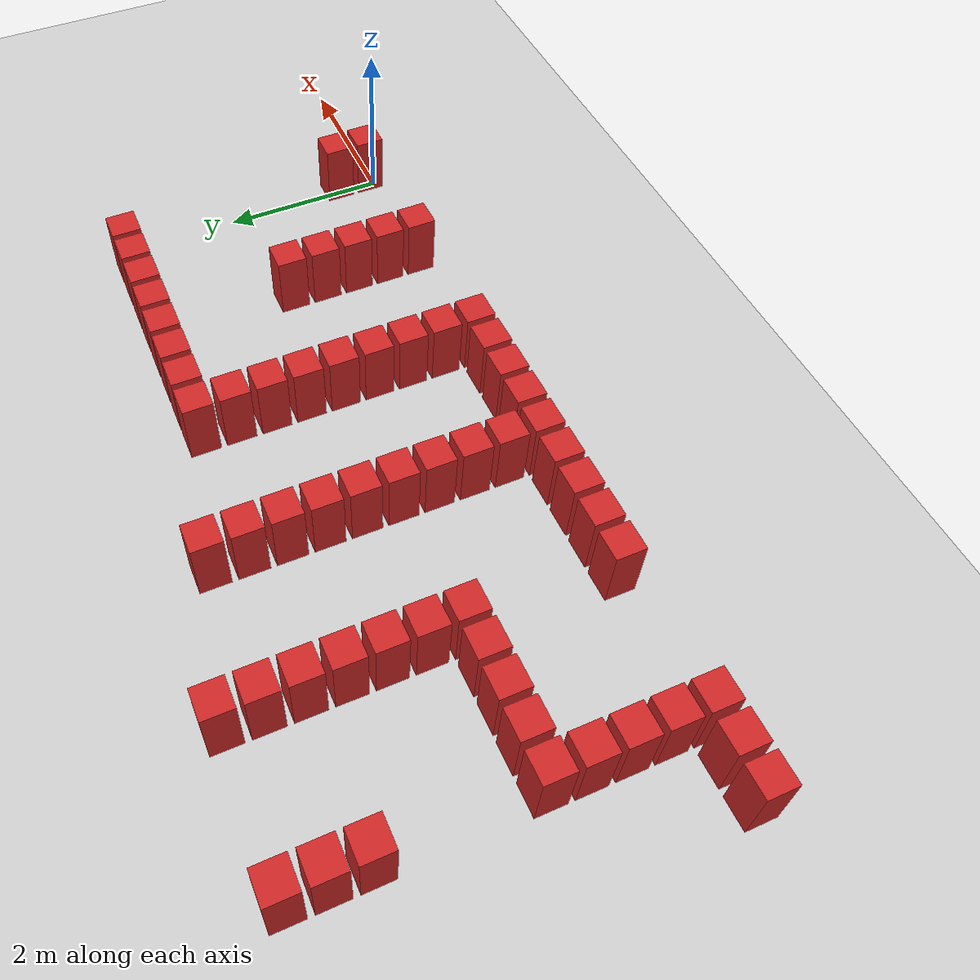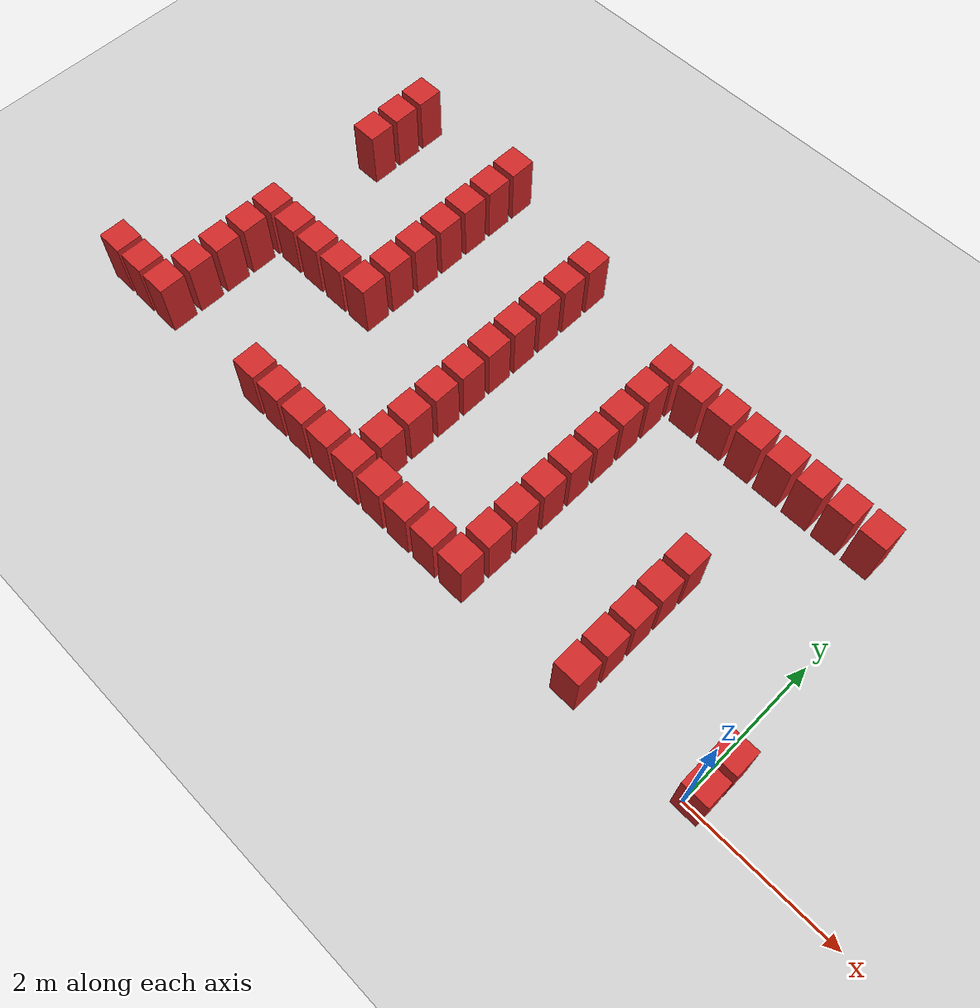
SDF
<sdf version="1.6">
 <world name="default">
  <model name="ground_plane">
   <static>1</static>
   <link name="link">
    <collision name="collision">
     <geometry><plane><normal>0 0 1</normal><size>100 100</size></plane></geometry>
     <surface><friction><ode><mu>100</mu><mu2>50</mu2></ode></friction></surface>
    </collision>
    <visual name="visual">
     <cast_shadows>0</cast_shadows>
     <geometry><plane><normal>0 0 1</normal><size>100 100</size></plane></geometry>
     <material>
      <script><uri>file://media/materials/scripts/gazebo.material</uri><name>Gazebo/Grey</name></script>
     </material>
    </visual>
   </link>
  </model>
  <model name="box_obstacle3">
   <static>0</static>
   <link name="link">
    <pose>0 0 0.1 0 -0 0</pose>
    <inertial>
     <mass>100</mass>
     <inertia>
      <ixx>0.166667</ixx>
      <ixy>0</ixy>
      <ixz>0</ixz>
      <iyy>0.166667</iyy>
      <iyz>0</iyz>
      <izz>0.166667</izz>
     </inertia>
    </inertial>
    <collision name="collision"><geometry><box><size>0.35 0.35 0.8</size></box></geometry></collision>
    <visual name="visual">
     <geometry><box><size>0.35 0.35 0.8</size></box></geometry>
     <material>
      <script><name>Gazebo/Red</name><uri>file://media/materials/scripts/gazebo.material</uri></script>
     </material>
    </visual>
   </link>
   <pose>-9.16034 0.080061 0.300001 -1e-06 1.7e-05 0.000735</pose>
  </model>
  <model name="box_obstacle5">
   <static>0</static>
   <link name="link">
    <pose>0 0 0.1 0 -0 0</pose>
    <inertial>
     <mass>100</mass>
     <inertia>
      <ixx>0.166667</ixx>
      <ixy>0</ixy>
      <ixz>0</ixz>
      <iyy>0.166667</iyy>
      <iyz>0</iyz>
      <izz>0.166667</izz>
     </inertia>
    </inertial>
    <collision name="collision"><geometry><box><size>0.35 0.35 0.8</size></box></geometry></collision>
    <visual name="visual">
     <geometry><box><size>0.35 0.35 0.8</size></box></geometry>
     <material>
      <script><name>Gazebo/Red</name><uri>file://media/materials/scripts/gazebo.material</uri></script>
     </material>
    </visual>
   </link>
   <pose>-8.74034 0.080061 0.300001 -1e-06 1.7e-05 0.000735</pose>
  </model>
  <model name="box_obstacle17">
   <static>0</static>
   <link name="link">
    <pose>0 0 0.1 0 -0 0</pose>
    <inertial>
     <mass>100</mass>
     <inertia>
      <ixx>0.166667</ixx>
      <ixy>0</ixy>
      <ixz>0</ixz>
      <iyy>0.166667</iyy>
      <iyz>0</iyz>
      <izz>0.166667</izz>
     </inertia>
    </inertial>
    <collision name="collision"><geometry><box><size>0.35 0.35 0.8</size></box></geometry></collision>
    <visual name="visual">
     <geometry><box><size>0.35 0.35 0.8</size></box></geometry>
     <material>
      <script><name>Gazebo/Red</name><uri>file://media/materials/scripts/gazebo.material</uri></script>
     </material>
    </visual>
   </link>
   <pose>-8.32034 0.080061 0.300001 -1e-06 1.7e-05 0.000735</pose>
  </model>
  <model name="box_obstacle18">
   <static>0</static>
   <link name="link">
    <pose>0 0 0.1 0 -0 0</pose>
    <inertial>
     <mass>100</mass>
     <inertia>
      <ixx>0.166667</ixx>
      <ixy>0</ixy>
      <ixz>0</ixz>
      <iyy>0.166667</iyy>
      <iyz>0</iyz>
      <izz>0.166667</izz>
     </inertia>
    </inertial>
    <collision name="collision"><geometry><box><size>0.35 0.35 0.8</size></box></geometry></collision>
    <visual name="visual">
     <geometry><box><size>0.35 0.35 0.8</size></box></geometry>
     <material>
      <script><name>Gazebo/Red</name><uri>file://media/materials/scripts/gazebo.material</uri></script>
     </material>
    </visual>
   </link>
   <pose>-8.32034 0.500061 0.300001 -1e-06 1.7e-05 0.000735</pose>
  </model>
  <model name="box_obstacle19">
   <static>0</static>
   <link name="link">
    <pose>0 0 0.1 0 -0 0</pose>
    <inertial>
     <mass>100</mass>
     <inertia>
      <ixx>0.166667</ixx>
      <ixy>0</ixy>
      <ixz>0</ixz>
      <iyy>0.166667</iyy>
      <iyz>0</iyz>
      <izz>0.166667</izz>
     </inertia>
    </inertial>
    <collision name="collision"><geometry><box><size>0.35 0.35 0.8</size></box></geometry></collision>
    <visual name="visual">
     <geometry><box><size>0.35 0.35 0.8</size></box></geometry>
     <material>
      <script><name>Gazebo/Red</name><uri>file://media/materials/scripts/gazebo.material</uri></script>
     </material>
    </visual>
   </link>
   <pose>-8.32034 0.920061 0.300001 -1e-06 1.7e-05 0.000735</pose>
  </model>
  <model name="box_obstacle20">
   <static>0</static>
   <link name="link">
    <pose>0 0 0.1 0 -0 0</pose>
    <inertial>
     <mass>100</mass>
     <inertia>
      <ixx>0.166667</ixx>
      <ixy>0</ixy>
      <ixz>0</ixz>
      <iyy>0.166667</iyy>
      <iyz>0</iyz>
      <izz>0.166667</izz>
     </inertia>
    </inertial>
    <collision name="collision"><geometry><box><size>0.35 0.35 0.8</size></box></geometry></collision>
    <visual name="visual">
     <geometry><box><size>0.35 0.35 0.8</size></box></geometry>
     <material>
      <script><name>Gazebo/Red</name><uri>file://media/materials/scripts/gazebo.material</uri></script>
     </material>
    </visual>
   </link>
   <pose>-8.32034 1.34006 0.300001 -1e-06 1.7e-05 0.000735</pose>
  </model>
  <model name="box_obstacle21">
   <static>0</static>
   <link name="link">
    <pose>0 0 0.1 0 -0 0</pose>
    <inertial>
     <mass>100</mass>
     <inertia>
      <ixx>0.166667</ixx>
      <ixy>0</ixy>
      <ixz>0</ixz>
      <iyy>0.166667</iyy>
      <iyz>0</iyz>
      <izz>0.166667</izz>
     </inertia>
    </inertial>
    <collision name="collision"><geometry><box><size>0.35 0.35 0.8</size></box></geometry></collision>
    <visual name="visual">
     <geometry><box><size>0.35 0.35 0.8</size></box></geometry>
     <material>
      <script><name>Gazebo/Red</name><uri>file://media/materials/scripts/gazebo.material</uri></script>
     </material>
    </visual>
   </link>
   <pose>-8.32034 1.76006 0.300001 -1e-06 1.7e-05 0.000735</pose>
  </model>
  <model name="box_obstacle22">
   <static>0</static>
   <link name="link">
    <pose>0 0 0.1 0 -0 0</pose>
    <inertial>
     <mass>100</mass>
     <inertia>
      <ixx>0.166667</ixx>
      <ixy>0</ixy>
      <ixz>0</ixz>
      <iyy>0.166667</iyy>
      <iyz>0</iyz>
      <izz>0.166667</izz>
     </inertia>
    </inertial>
    <collision name="collision"><geometry><box><size>0.35 0.35 0.8</size></box></geometry></collision>
    <visual name="visual">
     <geometry><box><size>0.35 0.35 0.8</size></box></geometry>
     <material>
      <script><name>Gazebo/Red</name><uri>file://media/materials/scripts/gazebo.material</uri></script>
     </material>
    </visual>
   </link>
   <pose>-8.32034 3.44006 0.300001 -1e-06 1.7e-05 0.000735</pose>
  </model>
  <model name="box_obstacle23">
   <static>0</static>
   <link name="link">
    <pose>0 0 0.1 0 -0 0</pose>
    <inertial>
     <mass>100</mass>
     <inertia>
      <ixx>0.166667</ixx>
      <ixy>0</ixy>
      <ixz>0</ixz>
      <iyy>0.166667</iyy>
      <iyz>0</iyz>
      <izz>0.166667</izz>
     </inertia>
    </inertial>
    <collision name="collision"><geometry><box><size>0.35 0.35 0.8</size></box></geometry></collision>
    <visual name="visual">
     <geometry><box><size>0.35 0.35 0.8</size></box></geometry>
     <material>
      <script><name>Gazebo/Red</name><uri>file://media/materials/scripts/gazebo.material</uri></script>
     </material>
    </visual>
   </link>
   <pose>-8.32034 3.86006 0.300001 -1e-06 1.7e-05 0.000735</pose>
  </model>
  <model name="box_obstacle24">
   <static>0</static>
   <link name="link">
    <pose>0 0 0.1 0 -0 0</pose>
    <inertial>
     <mass>100</mass>
     <inertia>
      <ixx>0.166667</ixx>
      <ixy>0</ixy>
      <ixz>0</ixz>
      <iyy>0.166667</iyy>
      <iyz>0</iyz>
      <izz>0.166667</izz>
     </inertia>
    </inertial>
    <collision name="collision"><geometry><box><size>0.35 0.35 0.8</size></box></geometry></collision>
    <visual name="visual">
     <geometry><box><size>0.35 0.35 0.8</size></box></geometry>
     <material>
      <script><name>Gazebo/Red</name><uri>file://media/materials/scripts/gazebo.material</uri></script>
     </material>
    </visual>
   </link>
   <pose>-8.32034 4.28006 0.300001 -1e-06 1.7e-05 0.000735</pose>
  </model>
  <model name="box_obstacle38">
   <static>0</static>
   <link name="link">
    <pose>0 0 0.1 0 -0 0</pose>
    <inertial>
     <mass>100</mass>
     <inertia>
      <ixx>0.166667</ixx>
      <ixy>0</ixy>
      <ixz>0</ixz>
      <iyy>0.166667</iyy>
      <iyz>0</iyz>
      <izz>0.166667</izz>
     </inertia>
    </inertial>
    <collision name="collision"><geometry><box><size>0.35 0.35 0.8</size></box></geometry></collision>
    <visual name="visual">
     <geometry><box><size>0.35 0.35 0.8</size></box></geometry>
     <material>
      <script><name>Gazebo/Red</name><uri>file://media/materials/scripts/gazebo.material</uri></script>
     </material>
    </visual>
   </link>
   <pose>-7.90034 1.76006 0.300001 -1e-06 1.7e-05 0.000735</pose>
  </model>
  <model name="box_obstacle43">
   <static>0</static>
   <link name="link">
    <pose>0 0 0.1 0 -0 0</pose>
    <inertial>
     <mass>100</mass>
     <inertia>
      <ixx>0.166667</ixx>
      <ixy>0</ixy>
      <ixz>0</ixz>
      <iyy>0.166667</iyy>
      <iyz>0</iyz>
      <izz>0.166667</izz>
     </inertia>
    </inertial>
    <collision name="collision"><geometry><box><size>0.35 0.35 0.8</size></box></geometry></collision>
    <visual name="visual">
     <geometry><box><size>0.35 0.35 0.8</size></box></geometry>
     <material>
      <script><name>Gazebo/Red</name><uri>file://media/materials/scripts/gazebo.material</uri></script>
     </material>
    </visual>
   </link>
   <pose>-7.48034 1.76006 0.300001 -1e-06 1.7e-05 0.000735</pose>
  </model>
  <model name="box_obstacle48">
   <static>0</static>
   <link name="link">
    <pose>0 0 0.1 0 -0 0</pose>
    <inertial>
     <mass>100</mass>
     <inertia>
      <ixx>0.166667</ixx>
      <ixy>0</ixy>
      <ixz>0</ixz>
      <iyy>0.166667</iyy>
      <iyz>0</iyz>
      <izz>0.166667</izz>
     </inertia>
    </inertial>
    <collision name="collision"><geometry><box><size>0.35 0.35 0.8</size></box></geometry></collision>
    <visual name="visual">
     <geometry><box><size>0.35 0.35 0.8</size></box></geometry>
     <material>
      <script><name>Gazebo/Red</name><uri>file://media/materials/scripts/gazebo.material</uri></script>
     </material>
    </visual>
   </link>
   <pose>-7.06034 1.76006 0.300001 -1e-06 1.7e-05 0.000735</pose>
  </model>
  <model name="box_obstacle64">
   <static>0</static>
   <link name="link">
    <pose>0 0 0.1 0 -0 0</pose>
    <inertial>
     <mass>100</mass>
     <inertia>
      <ixx>0.166667</ixx>
      <ixy>0</ixy>
      <ixz>0</ixz>
      <iyy>0.166667</iyy>
      <iyz>0</iyz>
      <izz>0.166667</izz>
     </inertia>
    </inertial>
    <collision name="collision"><geometry><box><size>0.35 0.35 0.8</size></box></geometry></collision>
    <visual name="visual">
     <geometry><box><size>0.35 0.35 0.8</size></box></geometry>
     <material>
      <script><name>Gazebo/Red</name><uri>file://media/materials/scripts/gazebo.material</uri></script>
     </material>
    </visual>
   </link>
   <pose>-6.64034 0.080061 0.300001 -1e-06 1.7e-05 0.000735</pose>
  </model>
  <model name="box_obstacle65">
   <static>0</static>
   <link name="link">
    <pose>0 0 0.1 0 -0 0</pose>
    <inertial>
     <mass>100</mass>
     <inertia>
      <ixx>0.166667</ixx>
      <ixy>0</ixy>
      <ixz>0</ixz>
      <iyy>0.166667</iyy>
      <iyz>0</iyz>
      <izz>0.166667</izz>
     </inertia>
    </inertial>
    <collision name="collision"><geometry><box><size>0.35 0.35 0.8</size></box></geometry></collision>
    <visual name="visual">
     <geometry><box><size>0.35 0.35 0.8</size></box></geometry>
     <material>
      <script><name>Gazebo/Red</name><uri>file://media/materials/scripts/gazebo.material</uri></script>
     </material>
    </visual>
   </link>
   <pose>-6.64034 1.76006 0.300001 -1e-06 1.7e-05 0.000735</pose>
  </model>
  <model name="box_obstacle66">
   <static>0</static>
   <link name="link">
    <pose>0 0 0.1 0 -0 0</pose>
    <inertial>
     <mass>100</mass>
     <inertia>
      <ixx>0.166667</ixx>
      <ixy>0</ixy>
      <ixz>0</ixz>
      <iyy>0.166667</iyy>
      <iyz>0</iyz>
      <izz>0.166667</izz>
     </inertia>
    </inertial>
    <collision name="collision"><geometry><box><size>0.35 0.35 0.8</size></box></geometry></collision>
    <visual name="visual">
     <geometry><box><size>0.35 0.35 0.8</size></box></geometry>
     <material>
      <script><name>Gazebo/Red</name><uri>file://media/materials/scripts/gazebo.material</uri></script>
     </material>
    </visual>
   </link>
   <pose>-6.64034 2.18006 0.300001 -1e-06 1.7e-05 0.000735</pose>
  </model>
  <model name="box_obstacle67">
   <static>0</static>
   <link name="link">
    <pose>0 0 0.1 0 -0 0</pose>
    <inertial>
     <mass>100</mass>
     <inertia>
      <ixx>0.166667</ixx>
      <ixy>0</ixy>
      <ixz>0</ixz>
      <iyy>0.166667</iyy>
      <iyz>0</iyz>
      <izz>0.166667</izz>
     </inertia>
    </inertial>
    <collision name="collision"><geometry><box><size>0.35 0.35 0.8</size></box></geometry></collision>
    <visual name="visual">
     <geometry><box><size>0.35 0.35 0.8</size></box></geometry>
     <material>
      <script><name>Gazebo/Red</name><uri>file://media/materials/scripts/gazebo.material</uri></script>
     </material>
    </visual>
   </link>
   <pose>-6.64034 2.60006 0.300001 -1e-06 1.7e-05 0.000735</pose>
  </model>
  <model name="box_obstacle68">
   <static>0</static>
   <link name="link">
    <pose>0 0 0.1 0 -0 0</pose>
    <inertial>
     <mass>100</mass>
     <inertia>
      <ixx>0.166667</ixx>
      <ixy>0</ixy>
      <ixz>0</ixz>
      <iyy>0.166667</iyy>
      <iyz>0</iyz>
      <izz>0.166667</izz>
     </inertia>
    </inertial>
    <collision name="collision"><geometry><box><size>0.35 0.35 0.8</size></box></geometry></collision>
    <visual name="visual">
     <geometry><box><size>0.35 0.35 0.8</size></box></geometry>
     <material>
      <script><name>Gazebo/Red</name><uri>file://media/materials/scripts/gazebo.material</uri></script>
     </material>
    </visual>
   </link>
   <pose>-6.64034 3.02006 0.300001 -1e-06 1.7e-05 0.000735</pose>
  </model>
  <model name="box_obstacle69">
   <static>0</static>
   <link name="link">
    <pose>0 0 0.1 0 -0 0</pose>
    <inertial>
     <mass>100</mass>
     <inertia>
      <ixx>0.166667</ixx>
      <ixy>0</ixy>
      <ixz>0</ixz>
      <iyy>0.166667</iyy>
      <iyz>0</iyz>
      <izz>0.166667</izz>
     </inertia>
    </inertial>
    <collision name="collision"><geometry><box><size>0.35 0.35 0.8</size></box></geometry></collision>
    <visual name="visual">
     <geometry><box><size>0.35 0.35 0.8</size></box></geometry>
     <material>
      <script><name>Gazebo/Red</name><uri>file://media/materials/scripts/gazebo.material</uri></script>
     </material>
    </visual>
   </link>
   <pose>-6.64034 3.44006 0.300001 -1e-06 1.7e-05 0.000735</pose>
  </model>
  <model name="box_obstacle70">
   <static>0</static>
   <link name="link">
    <pose>0 0 0.1 0 -0 0</pose>
    <inertial>
     <mass>100</mass>
     <inertia>
      <ixx>0.166667</ixx>
      <ixy>0</ixy>
      <ixz>0</ixz>
      <iyy>0.166667</iyy>
      <iyz>0</iyz>
      <izz>0.166667</izz>
     </inertia>
    </inertial>
    <collision name="collision"><geometry><box><size>0.35 0.35 0.8</size></box></geometry></collision>
    <visual name="visual">
     <geometry><box><size>0.35 0.35 0.8</size></box></geometry>
     <material>
      <script><name>Gazebo/Red</name><uri>file://media/materials/scripts/gazebo.material</uri></script>
     </material>
    </visual>
   </link>
   <pose>-6.64034 3.86006 0.300001 -1e-06 1.7e-05 0.000735</pose>
  </model>
  <model name="box_obstacle71">
   <static>0</static>
   <link name="link">
    <pose>0 0 0.1 0 -0 0</pose>
    <inertial>
     <mass>100</mass>
     <inertia>
      <ixx>0.166667</ixx>
      <ixy>0</ixy>
      <ixz>0</ixz>
      <iyy>0.166667</iyy>
      <iyz>0</iyz>
      <izz>0.166667</izz>
     </inertia>
    </inertial>
    <collision name="collision"><geometry><box><size>0.35 0.35 0.8</size></box></geometry></collision>
    <visual name="visual">
     <geometry><box><size>0.35 0.35 0.8</size></box></geometry>
     <material>
      <script><name>Gazebo/Red</name><uri>file://media/materials/scripts/gazebo.material</uri></script>
     </material>
    </visual>
   </link>
   <pose>-6.64034 4.28006 0.300001 -1e-06 1.7e-05 0.000735</pose>
  </model>
  <model name="box_obstacle84">
   <static>0</static>
   <link name="link">
    <pose>0 0 0.1 0 -0 0</pose>
    <inertial>
     <mass>100</mass>
     <inertia>
      <ixx>0.166667</ixx>
      <ixy>0</ixy>
      <ixz>0</ixz>
      <iyy>0.166667</iyy>
      <iyz>0</iyz>
      <izz>0.166667</izz>
     </inertia>
    </inertial>
    <collision name="collision"><geometry><box><size>0.35 0.35 0.8</size></box></geometry></collision>
    <visual name="visual">
     <geometry><box><size>0.35 0.35 0.8</size></box></geometry>
     <material>
      <script><name>Gazebo/Red</name><uri>file://media/materials/scripts/gazebo.material</uri></script>
     </material>
    </visual>
   </link>
   <pose>-6.22034 0.080061 0.300001 -1e-06 1.7e-05 0.000735</pose>
  </model>
  <model name="box_obstacle87">
   <static>0</static>
   <link name="link">
    <pose>0 0 0.1 0 -0 0</pose>
    <inertial>
     <mass>100</mass>
     <inertia>
      <ixx>0.166667</ixx>
      <ixy>0</ixy>
      <ixz>0</ixz>
      <iyy>0.166667</iyy>
      <iyz>0</iyz>
      <izz>0.166667</izz>
     </inertia>
    </inertial>
    <collision name="collision"><geometry><box><size>0.35 0.35 0.8</size></box></geometry></collision>
    <visual name="visual">
     <geometry><box><size>0.35 0.35 0.8</size></box></geometry>
     <material>
      <script><name>Gazebo/Red</name><uri>file://media/materials/scripts/gazebo.material</uri></script>
     </material>
    </visual>
   </link>
   <pose>-5.80034 0.080061 0.300001 -1e-06 1.7e-05 0.000735</pose>
  </model>
  <model name="box_obstacle90">
   <static>0</static>
   <link name="link">
    <pose>0 0 0.1 0 -0 0</pose>
    <inertial>
     <mass>100</mass>
     <inertia>
      <ixx>0.166667</ixx>
      <ixy>0</ixy>
      <ixz>0</ixz>
      <iyy>0.166667</iyy>
      <iyz>0</iyz>
      <izz>0.166667</izz>
     </inertia>
    </inertial>
    <collision name="collision"><geometry><box><size>0.35 0.35 0.8</size></box></geometry></collision>
    <visual name="visual">
     <geometry><box><size>0.35 0.35 0.8</size></box></geometry>
     <material>
      <script><name>Gazebo/Red</name><uri>file://media/materials/scripts/gazebo.material</uri></script>
     </material>
    </visual>
   </link>
   <pose>-5.38034 0.080061 0.300001 -1e-06 1.7e-05 0.000735</pose>
  </model>
  <model name="box_obstacle102">
   <static>0</static>
   <link name="link">
    <pose>0 0 0.1 0 -0 0</pose>
    <inertial>
     <mass>100</mass>
     <inertia>
      <ixx>0.166667</ixx>
      <ixy>0</ixy>
      <ixz>0</ixz>
      <iyy>0.166667</iyy>
      <iyz>0</iyz>
      <izz>0.166667</izz>
     </inertia>
    </inertial>
    <collision name="collision"><geometry><box><size>0.35 0.35 0.8</size></box></geometry></collision>
    <visual name="visual">
     <geometry><box><size>0.35 0.35 0.8</size></box></geometry>
     <material>
      <script><name>Gazebo/Red</name><uri>file://media/materials/scripts/gazebo.material</uri></script>
     </material>
    </visual>
   </link>
   <pose>-4.96034 0.080061 0.300001 -1e-06 1.7e-05 0.000735</pose>
  </model>
  <model name="box_obstacle103">
   <static>0</static>
   <link name="link">
    <pose>0 0 0.1 0 -0 0</pose>
    <inertial>
     <mass>100</mass>
     <inertia>
      <ixx>0.166667</ixx>
      <ixy>0</ixy>
      <ixz>0</ixz>
      <iyy>0.166667</iyy>
      <iyz>0</iyz>
      <izz>0.166667</izz>
     </inertia>
    </inertial>
    <collision name="collision"><geometry><box><size>0.35 0.35 0.8</size></box></geometry></collision>
    <visual name="visual">
     <geometry><box><size>0.35 0.35 0.8</size></box></geometry>
     <material>
      <script><name>Gazebo/Red</name><uri>file://media/materials/scripts/gazebo.material</uri></script>
     </material>
    </visual>
   </link>
   <pose>-4.96034 0.500061 0.300001 -1e-06 1.7e-05 0.000735</pose>
  </model>
  <model name="box_obstacle104">
   <static>0</static>
   <link name="link">
    <pose>0 0 0.1 0 -0 0</pose>
    <inertial>
     <mass>100</mass>
     <inertia>
      <ixx>0.166667</ixx>
      <ixy>0</ixy>
      <ixz>0</ixz>
      <iyy>0.166667</iyy>
      <iyz>0</iyz>
      <izz>0.166667</izz>
     </inertia>
    </inertial>
    <collision name="collision"><geometry><box><size>0.35 0.35 0.8</size></box></geometry></collision>
    <visual name="visual">
     <geometry><box><size>0.35 0.35 0.8</size></box></geometry>
     <material>
      <script><name>Gazebo/Red</name><uri>file://media/materials/scripts/gazebo.material</uri></script>
     </material>
    </visual>
   </link>
   <pose>-4.96034 0.920061 0.300001 -1e-06 1.7e-05 0.000735</pose>
  </model>
  <model name="box_obstacle105">
   <static>0</static>
   <link name="link">
    <pose>0 0 0.1 0 -0 0</pose>
    <inertial>
     <mass>100</mass>
     <inertia>
      <ixx>0.166667</ixx>
      <ixy>0</ixy>
      <ixz>0</ixz>
      <iyy>0.166667</iyy>
      <iyz>0</iyz>
      <izz>0.166667</izz>
     </inertia>
    </inertial>
    <collision name="collision"><geometry><box><size>0.35 0.35 0.8</size></box></geometry></collision>
    <visual name="visual">
     <geometry><box><size>0.35 0.35 0.8</size></box></geometry>
     <material>
      <script><name>Gazebo/Red</name><uri>file://media/materials/scripts/gazebo.material</uri></script>
     </material>
    </visual>
   </link>
   <pose>-4.96034 1.34006 0.300001 -1e-06 1.7e-05 0.000735</pose>
  </model>
  <model name="box_obstacle106">
   <static>0</static>
   <link name="link">
    <pose>0 0 0.1 0 -0 0</pose>
    <inertial>
     <mass>100</mass>
     <inertia>
      <ixx>0.166667</ixx>
      <ixy>0</ixy>
      <ixz>0</ixz>
      <iyy>0.166667</iyy>
      <iyz>0</iyz>
      <izz>0.166667</izz>
     </inertia>
    </inertial>
    <collision name="collision"><geometry><box><size>0.35 0.35 0.8</size></box></geometry></collision>
    <visual name="visual">
     <geometry><box><size>0.35 0.35 0.8</size></box></geometry>
     <material>
      <script><name>Gazebo/Red</name><uri>file://media/materials/scripts/gazebo.material</uri></script>
     </material>
    </visual>
   </link>
   <pose>-4.96034 1.76006 0.300001 -1e-06 1.7e-05 0.000735</pose>
  </model>
  <model name="box_obstacle107">
   <static>0</static>
   <link name="link">
    <pose>0 0 0.1 0 -0 0</pose>
    <inertial>
     <mass>100</mass>
     <inertia>
      <ixx>0.166667</ixx>
      <ixy>0</ixy>
      <ixz>0</ixz>
      <iyy>0.166667</iyy>
      <iyz>0</iyz>
      <izz>0.166667</izz>
     </inertia>
    </inertial>
    <collision name="collision"><geometry><box><size>0.35 0.35 0.8</size></box></geometry></collision>
    <visual name="visual">
     <geometry><box><size>0.35 0.35 0.8</size></box></geometry>
     <material>
      <script><name>Gazebo/Red</name><uri>file://media/materials/scripts/gazebo.material</uri></script>
     </material>
    </visual>
   </link>
   <pose>-4.96034 2.18006 0.300001 -1e-06 1.7e-05 0.000735</pose>
  </model>
  <model name="box_obstacle108">
   <static>0</static>
   <link name="link">
    <pose>0 0 0.1 0 -0 0</pose>
    <inertial>
     <mass>100</mass>
     <inertia>
      <ixx>0.166667</ixx>
      <ixy>0</ixy>
      <ixz>0</ixz>
      <iyy>0.166667</iyy>
      <iyz>0</iyz>
      <izz>0.166667</izz>
     </inertia>
    </inertial>
    <collision name="collision"><geometry><box><size>0.35 0.35 0.8</size></box></geometry></collision>
    <visual name="visual">
     <geometry><box><size>0.35 0.35 0.8</size></box></geometry>
     <material>
      <script><name>Gazebo/Red</name><uri>file://media/materials/scripts/gazebo.material</uri></script>
     </material>
    </visual>
   </link>
   <pose>-4.96034 2.60006 0.300001 -1e-06 1.7e-05 0.000735</pose>
  </model>
  <model name="box_obstacle109">
   <static>0</static>
   <link name="link">
    <pose>0 0 0.1 0 -0 0</pose>
    <inertial>
     <mass>100</mass>
     <inertia>
      <ixx>0.166667</ixx>
      <ixy>0</ixy>
      <ixz>0</ixz>
      <iyy>0.166667</iyy>
      <iyz>0</iyz>
      <izz>0.166667</izz>
     </inertia>
    </inertial>
    <collision name="collision"><geometry><box><size>0.35 0.35 0.8</size></box></geometry></collision>
    <visual name="visual">
     <geometry><box><size>0.35 0.35 0.8</size></box></geometry>
     <material>
      <script><name>Gazebo/Red</name><uri>file://media/materials/scripts/gazebo.material</uri></script>
     </material>
    </visual>
   </link>
   <pose>-4.96034 3.02006 0.300001 -1e-06 1.7e-05 0.000735</pose>
  </model>
  <model name="box_obstacle110">
   <static>0</static>
   <link name="link">
    <pose>0 0 0.1 0 -0 0</pose>
    <inertial>
     <mass>100</mass>
     <inertia>
      <ixx>0.166667</ixx>
      <ixy>0</ixy>
      <ixz>0</ixz>
      <iyy>0.166667</iyy>
      <iyz>0</iyz>
      <izz>0.166667</izz>
     </inertia>
    </inertial>
    <collision name="collision"><geometry><box><size>0.35 0.35 0.8</size></box></geometry></collision>
    <visual name="visual">
     <geometry><box><size>0.35 0.35 0.8</size></box></geometry>
     <material>
      <script><name>Gazebo/Red</name><uri>file://media/materials/scripts/gazebo.material</uri></script>
     </material>
    </visual>
   </link>
   <pose>-4.96034 3.44006 0.300001 -1e-06 1.7e-05 0.000735</pose>
  </model>
  <model name="box_obstacle111">
   <static>0</static>
   <link name="link">
    <pose>0 0 0.1 0 -0 0</pose>
    <inertial>
     <mass>100</mass>
     <inertia>
      <ixx>0.166667</ixx>
      <ixy>0</ixy>
      <ixz>0</ixz>
      <iyy>0.166667</iyy>
      <iyz>0</iyz>
      <izz>0.166667</izz>
     </inertia>
    </inertial>
    <collision name="collision"><geometry><box><size>0.35 0.35 0.8</size></box></geometry></collision>
    <visual name="visual">
     <geometry><box><size>0.35 0.35 0.8</size></box></geometry>
     <material>
      <script><name>Gazebo/Red</name><uri>file://media/materials/scripts/gazebo.material</uri></script>
     </material>
    </visual>
   </link>
   <pose>-4.96034 3.86006 0.300001 -1e-06 1.7e-05 0.000735</pose>
  </model>
  <model name="box_obstacle126">
   <static>0</static>
   <link name="link">
    <pose>0 0 0.1 0 -0 0</pose>
    <inertial>
     <mass>100</mass>
     <inertia>
      <ixx>0.166667</ixx>
      <ixy>0</ixy>
      <ixz>0</ixz>
      <iyy>0.166667</iyy>
      <iyz>0</iyz>
      <izz>0.166667</izz>
     </inertia>
    </inertial>
    <collision name="collision"><geometry><box><size>0.35 0.35 0.8</size></box></geometry></collision>
    <visual name="visual">
     <geometry><box><size>0.35 0.35 0.8</size></box></geometry>
     <material>
      <script><name>Gazebo/Red</name><uri>file://media/materials/scripts/gazebo.material</uri></script>
     </material>
    </visual>
   </link>
   <pose>-4.54034 0.080061 0.300001 -1e-06 1.7e-05 0.000735</pose>
  </model>
  <model name="box_obstacle131">
   <static>0</static>
   <link name="link">
    <pose>0 0 0.1 0 -0 0</pose>
    <inertial>
     <mass>100</mass>
     <inertia>
      <ixx>0.166667</ixx>
      <ixy>0</ixy>
      <ixz>0</ixz>
      <iyy>0.166667</iyy>
      <iyz>0</iyz>
      <izz>0.166667</izz>
     </inertia>
    </inertial>
    <collision name="collision"><geometry><box><size>0.35 0.35 0.8</size></box></geometry></collision>
    <visual name="visual">
     <geometry><box><size>0.35 0.35 0.8</size></box></geometry>
     <material>
      <script><name>Gazebo/Red</name><uri>file://media/materials/scripts/gazebo.material</uri></script>
     </material>
    </visual>
   </link>
   <pose>-4.12034 0.080061 0.300001 -1e-06 1.7e-05 0.000735</pose>
  </model>
  <model name="box_obstacle136">
   <static>0</static>
   <link name="link">
    <pose>0 0 0.1 0 -0 0</pose>
    <inertial>
     <mass>100</mass>
     <inertia>
      <ixx>0.166667</ixx>
      <ixy>0</ixy>
      <ixz>0</ixz>
      <iyy>0.166667</iyy>
      <iyz>0</iyz>
      <izz>0.166667</izz>
     </inertia>
    </inertial>
    <collision name="collision"><geometry><box><size>0.35 0.35 0.8</size></box></geometry></collision>
    <visual name="visual">
     <geometry><box><size>0.35 0.35 0.8</size></box></geometry>
     <material>
      <script><name>Gazebo/Red</name><uri>file://media/materials/scripts/gazebo.material</uri></script>
     </material>
    </visual>
   </link>
   <pose>-3.70034 0.080061 0.300001 -1e-06 1.7e-05 0.000735</pose>
  </model>
  <model name="box_obstacle152">
   <static>0</static>
   <link name="link">
    <pose>0 0 0.1 0 -0 0</pose>
    <inertial>
     <mass>100</mass>
     <inertia>
      <ixx>0.166667</ixx>
      <ixy>0</ixy>
      <ixz>0</ixz>
      <iyy>0.166667</iyy>
      <iyz>0</iyz>
      <izz>0.166667</izz>
     </inertia>
    </inertial>
    <collision name="collision"><geometry><box><size>0.35 0.35 0.8</size></box></geometry></collision>
    <visual name="visual">
     <geometry><box><size>0.35 0.35 0.8</size></box></geometry>
     <material>
      <script><name>Gazebo/Red</name><uri>file://media/materials/scripts/gazebo.material</uri></script>
     </material>
    </visual>
   </link>
   <pose>-3.28034 0.080061 0.300001 -1e-06 1.7e-05 0.000735</pose>
  </model>
  <model name="box_obstacle153">
   <static>0</static>
   <link name="link">
    <pose>0 0 0.1 0 -0 0</pose>
    <inertial>
     <mass>100</mass>
     <inertia>
      <ixx>0.166667</ixx>
      <ixy>0</ixy>
      <ixz>0</ixz>
      <iyy>0.166667</iyy>
      <iyz>0</iyz>
      <izz>0.166667</izz>
     </inertia>
    </inertial>
    <collision name="collision"><geometry><box><size>0.35 0.35 0.8</size></box></geometry></collision>
    <visual name="visual">
     <geometry><box><size>0.35 0.35 0.8</size></box></geometry>
     <material>
      <script><name>Gazebo/Red</name><uri>file://media/materials/scripts/gazebo.material</uri></script>
     </material>
    </visual>
   </link>
   <pose>-3.28034 0.500061 0.300001 -1e-06 1.7e-05 0.000735</pose>
  </model>
  <model name="box_obstacle154">
   <static>0</static>
   <link name="link">
    <pose>0 0 0.1 0 -0 0</pose>
    <inertial>
     <mass>100</mass>
     <inertia>
      <ixx>0.166667</ixx>
      <ixy>0</ixy>
      <ixz>0</ixz>
      <iyy>0.166667</iyy>
      <iyz>0</iyz>
      <izz>0.166667</izz>
     </inertia>
    </inertial>
    <collision name="collision"><geometry><box><size>0.35 0.35 0.8</size></box></geometry></collision>
    <visual name="visual">
     <geometry><box><size>0.35 0.35 0.8</size></box></geometry>
     <material>
      <script><name>Gazebo/Red</name><uri>file://media/materials/scripts/gazebo.material</uri></script>
     </material>
    </visual>
   </link>
   <pose>-3.28034 0.920061 0.300001 -1e-06 1.7e-05 0.000735</pose>
  </model>
  <model name="box_obstacle155">
   <static>0</static>
   <link name="link">
    <pose>0 0 0.1 0 -0 0</pose>
    <inertial>
     <mass>100</mass>
     <inertia>
      <ixx>0.166667</ixx>
      <ixy>0</ixy>
      <ixz>0</ixz>
      <iyy>0.166667</iyy>
      <iyz>0</iyz>
      <izz>0.166667</izz>
     </inertia>
    </inertial>
    <collision name="collision"><geometry><box><size>0.35 0.35 0.8</size></box></geometry></collision>
    <visual name="visual">
     <geometry><box><size>0.35 0.35 0.8</size></box></geometry>
     <material>
      <script><name>Gazebo/Red</name><uri>file://media/materials/scripts/gazebo.material</uri></script>
     </material>
    </visual>
   </link>
   <pose>-3.28034 1.34006 0.300001 -1e-06 1.7e-05 0.000735</pose>
  </model>
  <model name="box_obstacle156">
   <static>0</static>
   <link name="link">
    <pose>0 0 0.1 0 -0 0</pose>
    <inertial>
     <mass>100</mass>
     <inertia>
      <ixx>0.166667</ixx>
      <ixy>0</ixy>
      <ixz>0</ixz>
      <iyy>0.166667</iyy>
      <iyz>0</iyz>
      <izz>0.166667</izz>
     </inertia>
    </inertial>
    <collision name="collision"><geometry><box><size>0.35 0.35 0.8</size></box></geometry></collision>
    <visual name="visual">
     <geometry><box><size>0.35 0.35 0.8</size></box></geometry>
     <material>
      <script><name>Gazebo/Red</name><uri>file://media/materials/scripts/gazebo.material</uri></script>
     </material>
    </visual>
   </link>
   <pose>-3.28034 1.76006 0.300001 -1e-06 1.7e-05 0.000735</pose>
  </model>
  <model name="box_obstacle157">
   <static>0</static>
   <link name="link">
    <pose>0 0 0.1 0 -0 0</pose>
    <inertial>
     <mass>100</mass>
     <inertia>
      <ixx>0.166667</ixx>
      <ixy>0</ixy>
      <ixz>0</ixz>
      <iyy>0.166667</iyy>
      <iyz>0</iyz>
      <izz>0.166667</izz>
     </inertia>
    </inertial>
    <collision name="collision"><geometry><box><size>0.35 0.35 0.8</size></box></geometry></collision>
    <visual name="visual">
     <geometry><box><size>0.35 0.35 0.8</size></box></geometry>
     <material>
      <script><name>Gazebo/Red</name><uri>file://media/materials/scripts/gazebo.material</uri></script>
     </material>
    </visual>
   </link>
   <pose>-3.28034 2.18006 0.300001 -1e-06 1.7e-05 0.000735</pose>
  </model>
  <model name="box_obstacle158">
   <static>0</static>
   <link name="link">
    <pose>0 0 0.1 0 -0 0</pose>
    <inertial>
     <mass>100</mass>
     <inertia>
      <ixx>0.166667</ixx>
      <ixy>0</ixy>
      <ixz>0</ixz>
      <iyy>0.166667</iyy>
      <iyz>0</iyz>
      <izz>0.166667</izz>
     </inertia>
    </inertial>
    <collision name="collision"><geometry><box><size>0.35 0.35 0.8</size></box></geometry></collision>
    <visual name="visual">
     <geometry><box><size>0.35 0.35 0.8</size></box></geometry>
     <material>
      <script><name>Gazebo/Red</name><uri>file://media/materials/scripts/gazebo.material</uri></script>
     </material>
    </visual>
   </link>
   <pose>-3.28034 2.60006 0.300001 -1e-06 1.7e-05 0.000735</pose>
  </model>
  <model name="box_obstacle159">
   <static>0</static>
   <link name="link">
    <pose>0 0 0.1 0 -0 0</pose>
    <inertial>
     <mass>100</mass>
     <inertia>
      <ixx>0.166667</ixx>
      <ixy>0</ixy>
      <ixz>0</ixz>
      <iyy>0.166667</iyy>
      <iyz>0</iyz>
      <izz>0.166667</izz>
     </inertia>
    </inertial>
    <collision name="collision"><geometry><box><size>0.35 0.35 0.8</size></box></geometry></collision>
    <visual name="visual">
     <geometry><box><size>0.35 0.35 0.8</size></box></geometry>
     <material>
      <script><name>Gazebo/Red</name><uri>file://media/materials/scripts/gazebo.material</uri></script>
     </material>
    </visual>
   </link>
   <pose>-3.28034 3.02006 0.300001 -1e-06 1.7e-05 0.000735</pose>
  </model>
  <model name="box_obstacle160">
   <static>0</static>
   <link name="link">
    <pose>0 0 0.1 0 -0 0</pose>
    <inertial>
     <mass>100</mass>
     <inertia>
      <ixx>0.166667</ixx>
      <ixy>0</ixy>
      <ixz>0</ixz>
      <iyy>0.166667</iyy>
      <iyz>0</iyz>
      <izz>0.166667</izz>
     </inertia>
    </inertial>
    <collision name="collision"><geometry><box><size>0.35 0.35 0.8</size></box></geometry></collision>
    <visual name="visual">
     <geometry><box><size>0.35 0.35 0.8</size></box></geometry>
     <material>
      <script><name>Gazebo/Red</name><uri>file://media/materials/scripts/gazebo.material</uri></script>
     </material>
    </visual>
   </link>
   <pose>-3.28034 3.44006 0.300001 -1e-06 1.7e-05 0.000735</pose>
  </model>
  <model name="box_obstacle170">
   <static>0</static>
   <link name="link">
    <pose>0 0 0.1 0 -0 0</pose>
    <inertial>
     <mass>100</mass>
     <inertia>
      <ixx>0.166667</ixx>
      <ixy>0</ixy>
      <ixz>0</ixz>
      <iyy>0.166667</iyy>
      <iyz>0</iyz>
      <izz>0.166667</izz>
     </inertia>
    </inertial>
    <collision name="collision"><geometry><box><size>0.35 0.35 0.8</size></box></geometry></collision>
    <visual name="visual">
     <geometry><box><size>0.35 0.35 0.8</size></box></geometry>
     <material>
      <script><name>Gazebo/Red</name><uri>file://media/materials/scripts/gazebo.material</uri></script>
     </material>
    </visual>
   </link>
   <pose>-2.86034 3.44006 0.300001 -1e-06 1.7e-05 0.000735</pose>
  </model>
  <model name="box_obstacle176">
   <static>0</static>
   <link name="link">
    <pose>0 0 0.1 0 -0 0</pose>
    <inertial>
     <mass>100</mass>
     <inertia>
      <ixx>0.166667</ixx>
      <ixy>0</ixy>
      <ixz>0</ixz>
      <iyy>0.166667</iyy>
      <iyz>0</iyz>
      <izz>0.166667</izz>
     </inertia>
    </inertial>
    <collision name="collision"><geometry><box><size>0.35 0.35 0.8</size></box></geometry></collision>
    <visual name="visual">
     <geometry><box><size>0.35 0.35 0.8</size></box></geometry>
     <material>
      <script><name>Gazebo/Red</name><uri>file://media/materials/scripts/gazebo.material</uri></script>
     </material>
    </visual>
   </link>
   <pose>-2.44034 3.44006 0.300001 -1e-06 1.7e-05 0.000735</pose>
  </model>
  <model name="box_obstacle182">
   <static>0</static>
   <link name="link">
    <pose>0 0 0.1 0 -0 0</pose>
    <inertial>
     <mass>100</mass>
     <inertia>
      <ixx>0.166667</ixx>
      <ixy>0</ixy>
      <ixz>0</ixz>
      <iyy>0.166667</iyy>
      <iyz>0</iyz>
      <izz>0.166667</izz>
     </inertia>
    </inertial>
    <collision name="collision"><geometry><box><size>0.35 0.35 0.8</size></box></geometry></collision>
    <visual name="visual">
     <geometry><box><size>0.35 0.35 0.8</size></box></geometry>
     <material>
      <script><name>Gazebo/Red</name><uri>file://media/materials/scripts/gazebo.material</uri></script>
     </material>
    </visual>
   </link>
   <pose>-2.02034 3.44006 0.300001 -1e-06 1.7e-05 0.000735</pose>
  </model>
  <model name="box_obstacle196">
   <static>0</static>
   <link name="link">
    <pose>0 0 0.1 0 -0 0</pose>
    <inertial>
     <mass>100</mass>
     <inertia>
      <ixx>0.166667</ixx>
      <ixy>0</ixy>
      <ixz>0</ixz>
      <iyy>0.166667</iyy>
      <iyz>0</iyz>
      <izz>0.166667</izz>
     </inertia>
    </inertial>
    <collision name="collision"><geometry><box><size>0.35 0.35 0.8</size></box></geometry></collision>
    <visual name="visual">
     <geometry><box><size>0.35 0.35 0.8</size></box></geometry>
     <material>
      <script><name>Gazebo/Red</name><uri>file://media/materials/scripts/gazebo.material</uri></script>
     </material>
    </visual>
   </link>
   <pose>-1.60034 0.080061 0.300001 -1e-06 1.7e-05 0.000735</pose>
  </model>
  <model name="box_obstacle197">
   <static>0</static>
   <link name="link">
    <pose>0 0 0.1 0 -0 0</pose>
    <inertial>
     <mass>100</mass>
     <inertia>
      <ixx>0.166667</ixx>
      <ixy>0</ixy>
      <ixz>0</ixz>
      <iyy>0.166667</iyy>
      <iyz>0</iyz>
      <izz>0.166667</izz>
     </inertia>
    </inertial>
    <collision name="collision"><geometry><box><size>0.35 0.35 0.8</size></box></geometry></collision>
    <visual name="visual">
     <geometry><box><size>0.35 0.35 0.8</size></box></geometry>
     <material>
      <script><name>Gazebo/Red</name><uri>file://media/materials/scripts/gazebo.material</uri></script>
     </material>
    </visual>
   </link>
   <pose>-1.60034 0.500061 0.300001 -1e-06 1.7e-05 0.000735</pose>
  </model>
  <model name="box_obstacle198">
   <static>0</static>
   <link name="link">
    <pose>0 0 0.1 0 -0 0</pose>
    <inertial>
     <mass>100</mass>
     <inertia>
      <ixx>0.166667</ixx>
      <ixy>0</ixy>
      <ixz>0</ixz>
      <iyy>0.166667</iyy>
      <iyz>0</iyz>
      <izz>0.166667</izz>
     </inertia>
    </inertial>
    <collision name="collision"><geometry><box><size>0.35 0.35 0.8</size></box></geometry></collision>
    <visual name="visual">
     <geometry><box><size>0.35 0.35 0.8</size></box></geometry>
     <material>
      <script><name>Gazebo/Red</name><uri>file://media/materials/scripts/gazebo.material</uri></script>
     </material>
    </visual>
   </link>
   <pose>-1.60034 0.920061 0.300001 -1e-06 1.7e-05 0.000735</pose>
  </model>
  <model name="box_obstacle199">
   <static>0</static>
   <link name="link">
    <pose>0 0 0.1 0 -0 0</pose>
    <inertial>
     <mass>100</mass>
     <inertia>
      <ixx>0.166667</ixx>
      <ixy>0</ixy>
      <ixz>0</ixz>
      <iyy>0.166667</iyy>
      <iyz>0</iyz>
      <izz>0.166667</izz>
     </inertia>
    </inertial>
    <collision name="collision"><geometry><box><size>0.35 0.35 0.8</size></box></geometry></collision>
    <visual name="visual">
     <geometry><box><size>0.35 0.35 0.8</size></box></geometry>
     <material>
      <script><name>Gazebo/Red</name><uri>file://media/materials/scripts/gazebo.material</uri></script>
     </material>
    </visual>
   </link>
   <pose>-1.60034 1.34006 0.300001 -1e-06 1.7e-05 0.000735</pose>
  </model>
  <model name="box_obstacle200">
   <static>0</static>
   <link name="link">
    <pose>0 0 0.1 0 -0 0</pose>
    <inertial>
     <mass>100</mass>
     <inertia>
      <ixx>0.166667</ixx>
      <ixy>0</ixy>
      <ixz>0</ixz>
      <iyy>0.166667</iyy>
      <iyz>0</iyz>
      <izz>0.166667</izz>
     </inertia>
    </inertial>
    <collision name="collision"><geometry><box><size>0.35 0.35 0.8</size></box></geometry></collision>
    <visual name="visual">
     <geometry><box><size>0.35 0.35 0.8</size></box></geometry>
     <material>
      <script><name>Gazebo/Red</name><uri>file://media/materials/scripts/gazebo.material</uri></script>
     </material>
    </visual>
   </link>
   <pose>-1.60034 1.76006 0.300001 -1e-06 1.7e-05 0.000735</pose>
  </model>
  <model name="box_obstacle201">
   <static>0</static>
   <link name="link">
    <pose>0 0 0.1 0 -0 0</pose>
    <inertial>
     <mass>100</mass>
     <inertia>
      <ixx>0.166667</ixx>
      <ixy>0</ixy>
      <ixz>0</ixz>
      <iyy>0.166667</iyy>
      <iyz>0</iyz>
      <izz>0.166667</izz>
     </inertia>
    </inertial>
    <collision name="collision"><geometry><box><size>0.35 0.35 0.8</size></box></geometry></collision>
    <visual name="visual">
     <geometry><box><size>0.35 0.35 0.8</size></box></geometry>
     <material>
      <script><name>Gazebo/Red</name><uri>file://media/materials/scripts/gazebo.material</uri></script>
     </material>
    </visual>
   </link>
   <pose>-1.60034 3.44006 0.300001 -1e-06 1.7e-05 0.000735</pose>
  </model>
  <model name="box_obstacle211">
   <static>0</static>
   <link name="link">
    <pose>0 0 0.1 0 -0 0</pose>
    <inertial>
     <mass>100</mass>
     <inertia>
      <ixx>0.166667</ixx>
      <ixy>0</ixy>
      <ixz>0</ixz>
      <iyy>0.166667</iyy>
      <iyz>0</iyz>
      <izz>0.166667</izz>
     </inertia>
    </inertial>
    <collision name="collision"><geometry><box><size>0.35 0.35 0.8</size></box></geometry></collision>
    <visual name="visual">
     <geometry><box><size>0.35 0.35 0.8</size></box></geometry>
     <material>
      <script><name>Gazebo/Red</name><uri>file://media/materials/scripts/gazebo.material</uri></script>
     </material>
    </visual>
   </link>
   <pose>-1.18034 3.44006 0.300001 -1e-06 1.7e-05 0.000735</pose>
  </model>
  <model name="box_obstacle217">
   <static>0</static>
   <link name="link">
    <pose>0 0 0.1 0 -0 0</pose>
    <inertial>
     <mass>100</mass>
     <inertia>
      <ixx>0.166667</ixx>
      <ixy>0</ixy>
      <ixz>0</ixz>
      <iyy>0.166667</iyy>
      <iyz>0</iyz>
      <izz>0.166667</izz>
     </inertia>
    </inertial>
    <collision name="collision"><geometry><box><size>0.35 0.35 0.8</size></box></geometry></collision>
    <visual name="visual">
     <geometry><box><size>0.35 0.35 0.8</size></box></geometry>
     <material>
      <script><name>Gazebo/Red</name><uri>file://media/materials/scripts/gazebo.material</uri></script>
     </material>
    </visual>
   </link>
   <pose>-0.760339 3.44006 0.300001 -1e-06 1.7e-05 0.000735</pose>
  </model>
  <model name="box_obstacle223">
   <static>0</static>
   <link name="link">
    <pose>0 0 0.1 0 -0 0</pose>
    <inertial>
     <mass>100</mass>
     <inertia>
      <ixx>0.166667</ixx>
      <ixy>0</ixy>
      <ixz>0</ixz>
      <iyy>0.166667</iyy>
      <iyz>0</iyz>
      <izz>0.166667</izz>
     </inertia>
    </inertial>
    <collision name="collision"><geometry><box><size>0.35 0.35 0.8</size></box></geometry></collision>
    <visual name="visual">
     <geometry><box><size>0.35 0.35 0.8</size></box></geometry>
     <material>
      <script><name>Gazebo/Red</name><uri>file://media/materials/scripts/gazebo.material</uri></script>
     </material>
    </visual>
   </link>
   <pose>-0.340339 3.44006 0.300001 -1e-06 1.7e-05 0.000735</pose>
  </model>
  <model name="box_obstacle237">
   <static>0</static>
   <link name="link">
    <pose>0 0 0.1 0 -0 0</pose>
    <inertial>
     <mass>100</mass>
     <inertia>
      <ixx>0.166667</ixx>
      <ixy>0</ixy>
      <ixz>0</ixz>
      <iyy>0.166667</iyy>
      <iyz>0</iyz>
      <izz>0.166667</izz>
     </inertia>
    </inertial>
    <collision name="collision"><geometry><box><size>0.35 0.35 0.8</size></box></geometry></collision>
    <visual name="visual">
     <geometry><box><size>0.35 0.35 0.8</size></box></geometry>
     <material>
      <script><name>Gazebo/Red</name><uri>file://media/materials/scripts/gazebo.material</uri></script>
     </material>
    </visual>
   </link>
   <pose>0.079661 0.080061 0.300001 -1e-06 1.7e-05 0.000735</pose>
  </model>
  <model name="box_obstacle238">
   <static>0</static>
   <link name="link">
    <pose>0 0 0.1 0 -0 0</pose>
    <inertial>
     <mass>100</mass>
     <inertia>
      <ixx>0.166667</ixx>
      <ixy>0</ixy>
      <ixz>0</ixz>
      <iyy>0.166667</iyy>
      <iyz>0</iyz>
      <izz>0.166667</izz>
     </inertia>
    </inertial>
    <collision name="collision"><geometry><box><size>0.35 0.35 0.8</size></box></geometry></collision>
    <visual name="visual">
     <geometry><box><size>0.35 0.35 0.8</size></box></geometry>
     <material>
      <script><name>Gazebo/Red</name><uri>file://media/materials/scripts/gazebo.material</uri></script>
     </material>
    </visual>
   </link>
   <pose>0.079661 0.500061 0.300001 -1e-06 1.7e-05 0.000735</pose>
  </model>
 </world>
</sdf>
